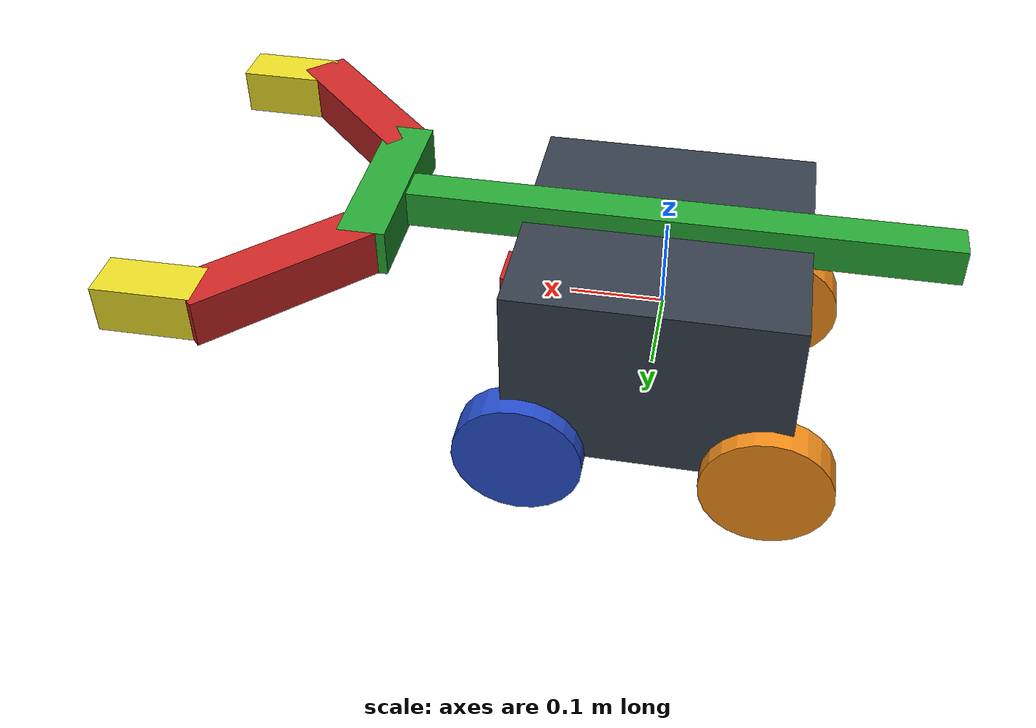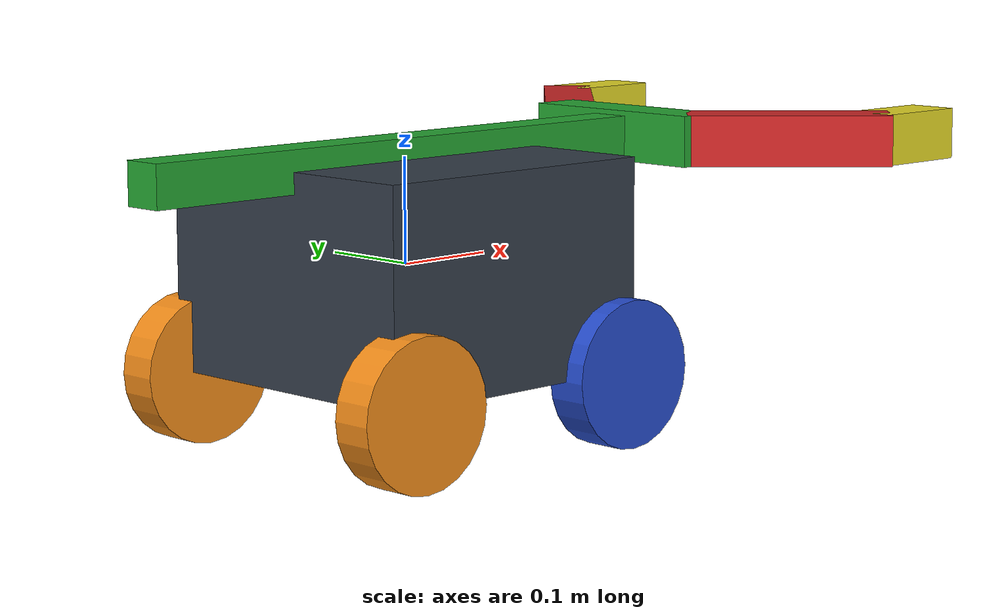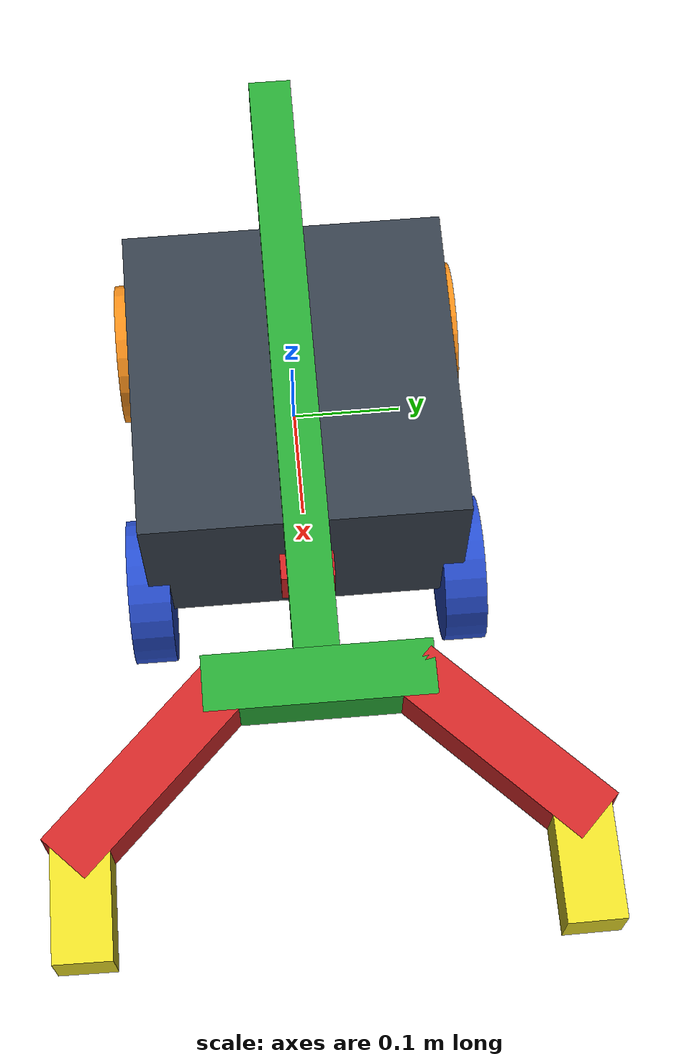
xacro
<?xml version="1.0" ?>

<robot name="umic_bot" xmlns:xacro="https://www.ros.org/wiki/xacro" >

  <xacro:include filename="$(find umic)/urdf/materials.xacro"/>
  <xacro:include filename="$(find umic)/urdf/umic_gazebo.xacro"/>

  <link name="base_link">
    <pose>0 0 0.2 0 0 0</pose>
    <inertial>
      <mass value="5"/>
      <origin rpy="0 0 0" xyz="0 0 0.1"/>
      <inertia ixx="0.03954166" ixy="0" ixz="0" iyy="0.10620833" iyz="0"  izz="0.1062083"/>
    </inertial>

    <collision name="collision_chassis">
      <origin rpy="0 0 0" xyz="0 0 0"/>
      <geometry>
        <box size="0.3 0.3 0.2"/>
      </geometry>
    </collision>

    <visual>
      <origin rpy="0 0 0" xyz="0 0 0"/>
      <geometry>
        <box size="0.3 0.3 0.2"/>
      </geometry>
      <material name="blue"/>
    </visual>

    <collision>
      <origin rpy="0 1.5707 1.5707" xyz="-0.13 0.15 -0.1" />
      <geometry>
        <cylinder length="0.04" radius="0.07"/>
      </geometry>
      <surface>
        <friction>
          <ode>
            <mu>0</mu>
            <mu2>0</mu2>
            <slip1>1.0</slip1>
            <slip2>1.0</slip2>
          </ode>
        </friction>
      </surface>
    </collision>

    <visual>
      <origin rpy="0 1.5707 1.5707" xyz="-0.13 0.15 -0.1"/>
      <geometry>
        <cylinder length="0.04" radius="0.07"/>
      </geometry>
    </visual>

    <collision>
      <origin rpy="0 1.5707 1.5707" xyz="-0.13 -0.15 -0.1" />
      <geometry>
        <cylinder length="0.04" radius="0.07"/>
      </geometry>
      <surface>
        <friction>
          <ode>
            <mu>0</mu>
            <mu2>0</mu2>
            <slip1>1.0</slip1>
            <slip2>1.0</slip2>
          </ode>
        </friction>
      </surface>
    </collision>

    <visual>
      <origin rpy="0 1.5707 1.5707" xyz="-0.13 -0.15 -0.1"/>
      <geometry>
        <cylinder length="0.04" radius="0.07"/>
      </geometry>
    </visual>
  </link>

  <xacro:macro name="wheel" params="wheel_name">
    <link name="${wheel_name}">
      <inertial>
        <mass value="0.2"/>
        <origin rpy="0 1.5707 1.5707" xyz="0 0 0"/>
        <inertia ixx="0.0012" ixy="0" ixz="0" iyy="0.0012" iyz="0" izz="0.002"/>
      </inertial>

      <collision>
        <origin rpy="0 1.5707 1.5707" xyz="0 0 0" />
        <geometry>
          <cylinder length="0.04" radius="0.07"/>
        </geometry>
      </collision>

      <visual>
        <origin rpy="0 1.5707 1.5707" xyz="0 0 0"/>
        <geometry>
          <cylinder length="0.04" radius="0.07"/>
        </geometry>
      </visual>
   </link>
  </xacro:macro>

  <xacro:wheel wheel_name="wheel_left">
  </xacro:wheel>
  <xacro:wheel wheel_name="wheel_right">
  </xacro:wheel>

  <xacro:macro name="wheel_chassis_joint" params="joint_name child_link *origin">
    <joint name="${joint_name}" type="continuous">
      <xacro:insert_block name="origin"/>
      <parent link="base_link"/>
      <child link="${child_link}"/>
      <axis rpy="0 0 0" xyz="0 1 0"/>
      <limit effort="10000" velocity="1000"/>
      <joint_properties damping="1.0" friction="1.0" />
    </joint>
  </xacro:macro>

  <xacro:wheel_chassis_joint joint_name="wheel_left_chassis" child_link="wheel_left">
    <origin xyz="0.13 0.15 -0.1" rpy="0 0 0"/>
  </xacro:wheel_chassis_joint>

  <xacro:wheel_chassis_joint joint_name="wheel_right_chassis" child_link="wheel_right">
    <origin xyz="0.13 -0.15 -0.1" rpy="0 0 0"/>
  </xacro:wheel_chassis_joint>

  <link name="horizontal_slider">
    <inertial>
      <mass value="0.5"/>
      <origin xyz="0 0 0" rpy="0 0 0"/>
      <inertia ixx="0.1" ixy="0" ixz="0" iyy="0.1" iyz="0" izz="0.1"/>
    </inertial>

    <collision>
      <origin xyz="0 0 0" rpy="0 0 0"/>
      <geometry>
        <box size="0.6 0.04 0.04"/>
      </geometry>
    </collision>

    <visual>
      <origin xyz="0 0 0" rpy="0 0 0"/>
      <geometry>
        <box size="0.6 0.04 0.04"/>
      </geometry>
    </visual>
  </link>

  <joint name="slider_on_bot" type="prismatic">
    <origin xyz="0 0 0.1" rpy="0 0 0"/>
    <parent link="base_link"/>
    <child link="horizontal_slider"/>
    <axis rpy="0 0 0" xyz="1 0 0"/>
    <limit lower="-0.04" upper="0.10" effort="10000" velocity="1000"/>
    <joint_properties damping="1.0" friction="1.0" />
  </joint>

  <link name="palm">
    <inertial>
      <mass value="0.01"/>
      <origin xyz="0 0 0.05" rpy="0 0 0"/>
      <inertia ixx="0.01" ixy="0" ixz="0" iyy="0.01" iyz="0" izz="0.01"/>
    </inertial>
    <collision>
      <origin xyz="0 0 0" rpy="0 0 0"/>
      <geometry>
        <box size="0.05 0.2 0.05"/>
      </geometry>
    </collision>
    <visual>
      <origin xyz="0 0 0" rpy="0 0 0"/>
      <geometry>
        <box size="0.05 0.2 0.05"/>
      </geometry>
    </visual>
  </link>

  <link name="left_finger">
    <inertial>
      <mass value="0.01"/>
      <origin xyz="0 0 0" rpy="0 0 0"/>
      <inertia ixx="0.01" ixy="0" ixz="0" iyy="0.01" iyz="0" izz="0"/>
    </inertial>
    <collision>
      <origin xyz="0 -0.1 0" rpy="0 0 0"/>
      <geometry>
        <box size="0.05 0.2 0.05"/>
      </geometry>
    </collision>
    <visual>
      <origin xyz="0 -0.1 0" rpy="0 0 0"/>
      <geometry>
        <box size="0.05 0.2 0.05"/>
      </geometry>
    </visual>
  </link>

  <link name="right_finger">
    <inertial>
      <mass value="0.01"/>
      <origin xyz="0 0 0" rpy="0 0 0"/>
      <inertia ixx="0.01" ixy="0" ixz="0" iyy="0.01" iyz="0" izz="0"/>
    </inertial>
    <collision>
      <origin xyz="0 0.1 0" rpy="0 0 0"/>
      <geometry>
        <box size="0.05 0.2 0.05"/>
      </geometry>
    </collision>
    <visual>
      <origin xyz="0 0.1 0" rpy="0 0 0"/>
      <geometry>
        <box size="0.05 0.2 0.05"/>
      </geometry>
    </visual>
  </link>

  <link name="left_finger_tip">
    <inertial>
      <origin xyz="0 0 0" rpy="0 0 0"/>
      <mass value="0.01"/>
      <inertia ixx="0.01" ixy="0" ixz="0" iyy="0.01" iyz="0" izz="0.01"/>
    </inertial>
    <collision>
      <origin xyz="0 -0.05 0" rpy="0 0 0"/>
      <geometry>
        <box size="0.05 0.1 0.05"/>
      </geometry>
    </collision>
    <visual>
      <origin xyz="0 -0.05 0" rpy="0 0 0"/>
      <geometry>
        <box size="0.05 0.1 0.05"/>
      </geometry>
    </visual>
  </link>

  <link name="right_finger_tip">
    <inertial>
      <origin xyz="0 0 0" rpy="0 0 0"/>
      <mass value="0.01"/>
      <inertia ixx="0.01" ixy="0" ixz="0" iyy="0.01" iyz="0" izz="0.01"/>
    </inertial>
    <collision>
      <origin xyz="0 0.05 0" rpy="0 0 0"/>
      <geometry>
        <box size="0.05 0.1 0.05"/>
      </geometry>
    </collision>
    <visual>
      <origin xyz="0 0.05 0" rpy="0 0 0"/>
      <geometry>
        <box size="0.05 0.1 0.05"/>
      </geometry>
    </visual>
  </link>

  <joint name="palm_left_finger" type="revolute">
    <origin xyz="0 -0.08 0" rpy="0 0 0.78"/>
    <child link="left_finger"/>
    <parent link="palm"/>
    <axis xyz="0 0 1" />
    <limit lower="0" upper="0.72" effort="10" velocity="10"/>
  </joint>

  <joint name="left_finger_tip" type="fixed">
    <origin xyz="0 -0.18 0" rpy="0 0 0.78"/>
    <child link="left_finger_tip"/>
    <parent link="left_finger"/>
  </joint>

  <joint name="palm_right_finger" type="revolute">
    <origin xyz="0 0.08 0" rpy="0 0 -0.78"/>
    <child link="right_finger"/>
    <parent link="palm"/>
    <axis xyz="0 0 1" />
    <limit lower="-0.72" upper="0" effort="10" velocity="10"/>
  </joint>

  <joint name="right_finger_tip" type="fixed">
    <origin xyz="0 0.18 0" rpy="0 0 -0.78"/>
    <child link="right_finger_tip"/>
    <parent link="right_finger"/>
  </joint>

  <joint name="palm_slider" type="fixed">
    <origin xyz="0.3 0 0" rpy="0 0 0"/>
    <child link="palm"/>
    <parent link="horizontal_slider"/>
  </joint>

  <xacro:property name="camera_link" value="0.05"/>

  <!--CAMERA_LINK-->
  <joint name="camera_joint" type="fixed">
    <axis xyz="0 1 0" />
    <origin xyz="0.15 0 0" rpy="0 0 0"/>
    <parent link="base_link"/>
    <child link="camera_link"/>
  </joint>

  <!-- Camera -->
  <link name="camera_link">
    <collision>
      <origin xyz="0 0 0" rpy="0 0 0"/>
      <geometry>
    <box size="${camera_link} ${camera_link} ${camera_link}"/>
      </geometry>
    </collision>

    <visual>
      <origin xyz="0 0 0" rpy="0 0 0"/>
      <geometry>
    <box size="${camera_link} ${camera_link} ${camera_link}"/>
      </geometry>
      <material name="red"/>
    </visual>

    <inertial>
      <mass value="1e-5" />
      <origin xyz="0 0 0" rpy="0 0 0"/>
      <inertia ixx="1e-6" ixy="0" ixz="0" iyy="1e-6" iyz="0" izz="1e-6" />
    </inertial>
  </link>

</robot>

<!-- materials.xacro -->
<robot name="" xmlns:xacro="https://www.ros.org/wiki/xacro">

  <material name="black">
    <color rgba="0.0 0.0 0.0 1.0"/>
  </material>
  <material name="blue">
    <color rgba="0.203125 0.23828125 0.28515625 1.0"/>
  </material>
  <material name="green">
    <color rgba="0.0 0.8 0.0 1.0"/>
  </material>
  <material name="grey">
    <color rgba="0.2 0.2 0.2 1.0"/>
  </material>
  <material name="orange">
    <color rgba="1.0 0.423529411765 0.0392156862745 1.0"/>
  </material>
  <material name="brown">
    <color rgba="0.870588235294 0.811764705882 0.764705882353 1.0"/>
  </material>
  <material name="red">
    <color rgba="0.80078125 0.12890625 0.1328125 1.0"/>
  </material>
  <material name="white">
    <color rgba="1.0 1.0 1.0 1.0"/>
  </material>

</robot>
